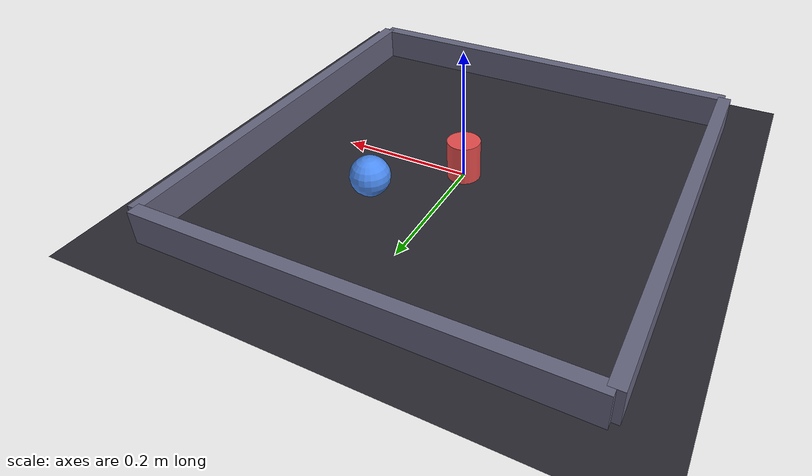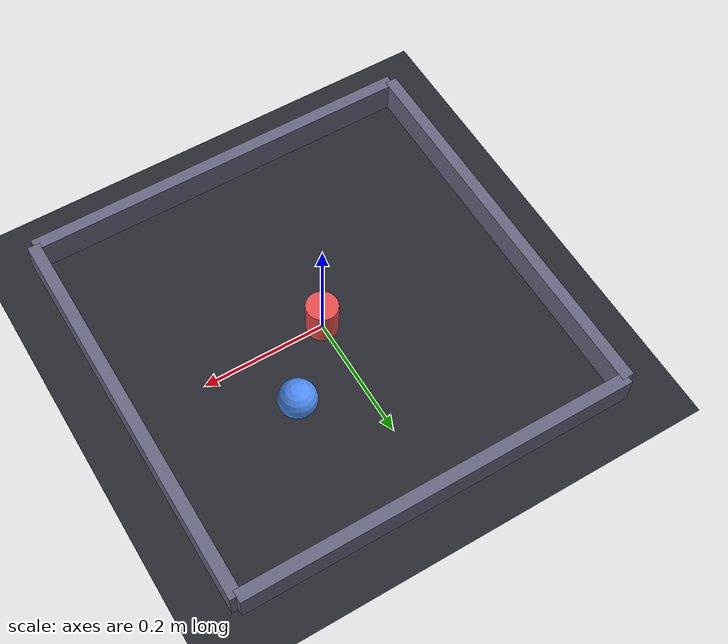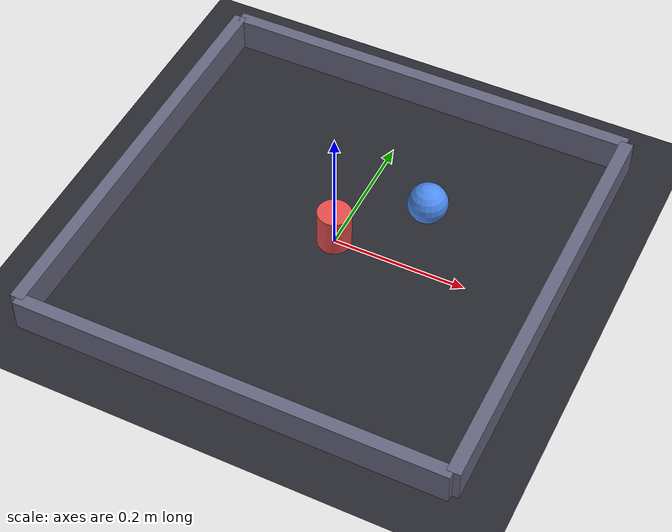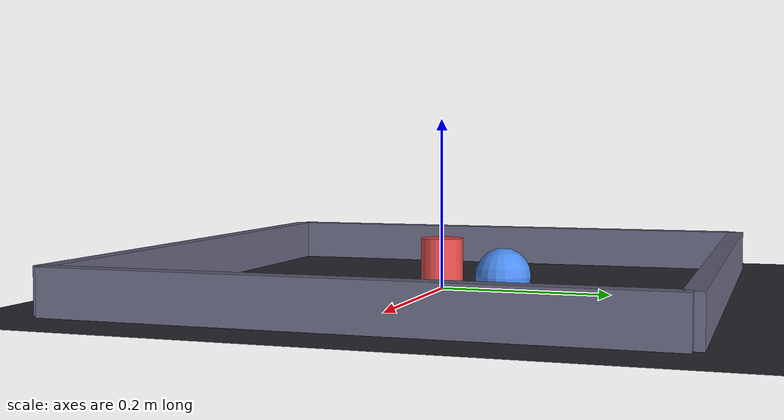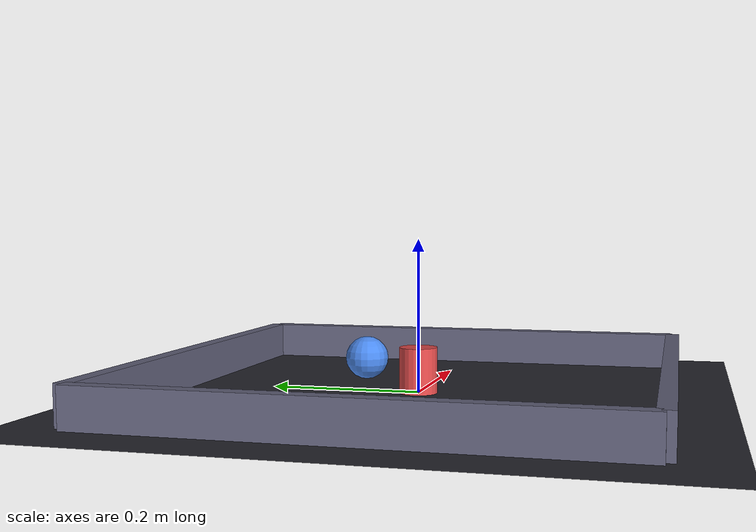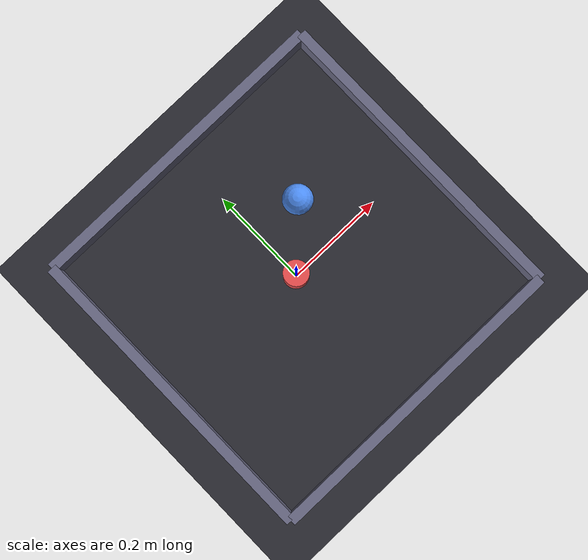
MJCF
<mujoco model="pusher2d">
  <option timestep="0.002" gravity="0 0 -9.81"/>
  <visual>
    <global offwidth="64" offheight="64"/>
    <headlight diffuse="0.8 0.8 0.8" ambient="0.4 0.4 0.4"/>
  </visual>
  <asset>
    <texture name="grid" type="2d" builtin="checker" rgb1="0.12 0.12 0.14" rgb2="0.20 0.20 0.24" width="300" height="300"/>
    <material name="grid" texture="grid" texrepeat="6 6" reflectance="0"/>
  </asset>
  <worldbody>
    <light pos="0 0 1.5" dir="0 0 -1" diffuse="1 1 1"/>
    <camera name="topdown" pos="0 0 1.1" xyaxes="1 0 0 0 1 0"/>
    <geom name="floor" type="plane" size="0.4 0.4 0.01" material="grid"/>
    <geom name="wall_px" type="box" pos="0.32 0 0.02" size="0.01 0.32 0.03" rgba="0.4 0.4 0.5 1"/>
    <geom name="wall_nx" type="box" pos="-0.32 0 0.02" size="0.01 0.32 0.03" rgba="0.4 0.4 0.5 1"/>
    <geom name="wall_py" type="box" pos="0 0.32 0.02" size="0.32 0.01 0.03" rgba="0.4 0.4 0.5 1"/>
    <geom name="wall_ny" type="box" pos="0 -0.32 0.02" size="0.32 0.01 0.03" rgba="0.4 0.4 0.5 1"/>

    <body name="pusher" pos="0 0 0.03">
      <joint name="px" type="slide" axis="1 0 0" range="-0.3 0.3" damping="8"/>
      <joint name="py" type="slide" axis="0 1 0" range="-0.3 0.3" damping="8"/>
      <geom name="pusher" type="cylinder" size="0.025 0.03" rgba="0.9 0.3 0.3 1"/>
    </body>

    <body name="ball" pos="0.1 0.1 0.03">
      <joint name="ball_free" type="free"/>
      <geom name="ball" type="sphere" size="0.03" rgba="0.3 0.55 0.95 1" mass="0.05" friction="0.6 0.01 0.001"/>
    </body>
  </worldbody>
  <actuator>
    <position joint="px" kp="60" ctrlrange="-0.3 0.3"/>
    <position joint="py" kp="60" ctrlrange="-0.3 0.3"/>
  </actuator>
</mujoco>
